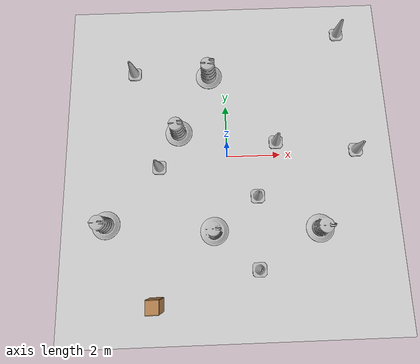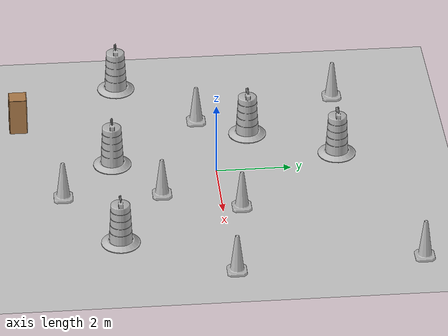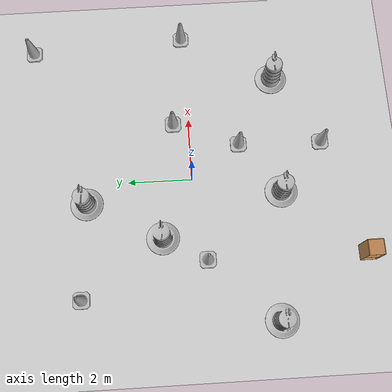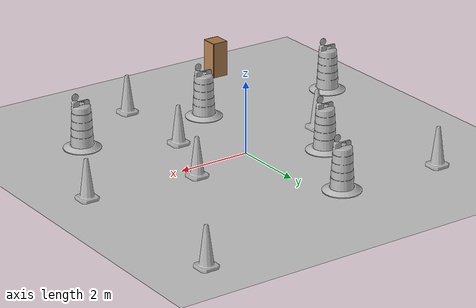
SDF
<sdf version="1.7">
 <world name="default">
  <light name="sun" type="directional">
   <pose>0 0 10 0 -0 0</pose>
   <diffuse>0.8 0.8 0.8 1</diffuse>
   <specular>0.2 0.2 0.2 1</specular>
   <attenuation>
    <range>1000</range>
    <constant>0.9</constant>
    <linear>0.01</linear>
    <quadratic>0.001</quadratic>
   </attenuation>
   <direction>-0.5 0.1 -0.9</direction>
   <spot><inner_angle>0</inner_angle><outer_angle>0</outer_angle><falloff>0</falloff></spot>
  </light>
  <model name="ground_plane">
   <static>1</static>
   <link name="link">
    <collision name="collision">
     <geometry><plane><normal>0 0 1</normal><size>100 100</size></plane></geometry>
     <surface><friction><ode><mu>100</mu><mu2>50</mu2></ode></friction></surface>
    </collision>
    <visual name="visual">
     <cast_shadows>0</cast_shadows>
     <geometry><plane><normal>0 0 1</normal><size>100 100</size></plane></geometry>
     <material>
      <script><uri>file://media/materials/scripts/gazebo.material</uri><name>Gazebo/Grey</name></script>
     </material>
    </visual>
   </link>
  </model>
  <gravity>0 0 -9.8</gravity>
  <magnetic_field>6e-06 2.3e-05 -4.2e-05</magnetic_field>
  <atmosphere type="adiabatic"/>
  <physics type="ode">
   <max_step_size>0.001</max_step_size>
   <real_time_factor>1</real_time_factor>
   <real_time_update_rate>1000</real_time_update_rate>
  </physics>
  <scene><ambient>0.4 0.4 0.4 1</ambient><background>0.7 0.7 0.7 1</background><shadows>1</shadows></scene>
  <audio><device>default</device></audio>
  <spherical_coordinates>
   <surface_model>EARTH_WGS84</surface_model>
   <latitude_deg>0</latitude_deg>
   <longitude_deg>0</longitude_deg>
   <elevation>0</elevation>
   <heading_deg>0</heading_deg>
  </spherical_coordinates>
  <model name="Construction Barrel">
   <link name="link">
    <inertial>
     <pose>0 0 0.4 0 -0 0</pose>
     <mass>500</mass>
     <inertia><ixx>51.2096</ixx><iyy>51.2096</iyy><izz>25</izz><ixy>0</ixy><ixz>0</ixz><iyz>0</iyz></inertia>
    </inertial>
    <collision name="collision">
     <geometry><mesh><uri>model://construction_barrel/meshes/construction_barrel.dae</uri></mesh></geometry>
    </collision>
    <visual name="visual">
     <geometry><mesh><uri>model://construction_barrel/meshes/construction_barrel.dae</uri></mesh></geometry>
    </visual>
   </link>
   <pose>-0.550589 -2.75718 1e-06 3e-06 2e-06 -2.2e-05</pose>
  </model>
  <model name="Construction Barrel_0">
   <link name="link">
    <inertial>
     <pose>0 0 0.4 0 -0 0</pose>
     <mass>500</mass>
     <inertia><ixx>51.2096</ixx><iyy>51.2096</iyy><izz>25</izz><ixy>0</ixy><ixz>0</ixz><iyz>0</iyz></inertia>
    </inertial>
    <collision name="collision">
     <geometry><mesh><uri>model://construction_barrel/meshes/construction_barrel.dae</uri></mesh></geometry>
    </collision>
    <visual name="visual">
     <geometry><mesh><uri>model://construction_barrel/meshes/construction_barrel.dae</uri></mesh></geometry>
    </visual>
   </link>
   <pose>-0.613211 3.30074 1e-06 3e-06 2e-06 -2.1e-05</pose>
  </model>
  <model name="Construction Cone">
   <link name="link">
    <collision name="collision">
     <geometry>
      <mesh><scale>10 10 10</scale><uri>model://construction_cone/meshes/construction_cone.dae</uri></mesh>
     </geometry>
    </collision>
    <visual name="visual">
     <geometry>
      <mesh><scale>10 10 10</scale><uri>model://construction_cone/meshes/construction_cone.dae</uri></mesh>
     </geometry>
    </visual>
    <inertial>
     <inertia><ixx>1</ixx><ixy>0</ixy><ixz>0</ixz><iyy>1</iyy><iyz>0</iyz><izz>1</izz></inertia>
     <mass>1</mass>
    </inertial>
   </link>
   <pose>1.86235 0.499717 0 -0 -0 -0</pose>
  </model>
  <model name="Construction Cone_0">
   <link name="link">
    <collision name="collision">
     <geometry>
      <mesh><scale>10 10 10</scale><uri>model://construction_cone/meshes/construction_cone.dae</uri></mesh>
     </geometry>
    </collision>
    <visual name="visual">
     <geometry>
      <mesh><scale>10 10 10</scale><uri>model://construction_cone/meshes/construction_cone.dae</uri></mesh>
     </geometry>
    </visual>
    <inertial>
     <inertia><ixx>1</ixx><ixy>0</ixy><ixz>0</ixz><iyy>1</iyy><iyz>0</iyz><izz>1</izz></inertia>
     <mass>1</mass>
    </inertial>
   </link>
   <pose>4.61175 4.97089 0 -0 -0 -0</pose>
  </model>
  <model name="Construction Cone_1">
   <link name="link">
    <collision name="collision">
     <geometry>
      <mesh><scale>10 10 10</scale><uri>model://construction_cone/meshes/construction_cone.dae</uri></mesh>
     </geometry>
    </collision>
    <visual name="visual">
     <geometry>
      <mesh><scale>10 10 10</scale><uri>model://construction_cone/meshes/construction_cone.dae</uri></mesh>
     </geometry>
    </visual>
    <inertial>
     <inertia><ixx>1</ixx><ixy>0</ixy><ixz>0</ixz><iyy>1</iyy><iyz>0</iyz><izz>1</izz></inertia>
     <mass>1</mass>
    </inertial>
   </link>
   <pose>4.86775 0.09049 -0 0 -0 0</pose>
  </model>
  <model name="Construction Barrel_1">
   <link name="link">
    <inertial>
     <pose>0 0 0.4 0 -0 0</pose>
     <mass>500</mass>
     <inertia><ixx>51.2096</ixx><iyy>51.2096</iyy><izz>25</izz><ixy>0</ixy><ixz>0</ixz><iyz>0</iyz></inertia>
    </inertial>
    <collision name="collision">
     <geometry><mesh><uri>model://construction_barrel/meshes/construction_barrel.dae</uri></mesh></geometry>
    </collision>
    <visual name="visual">
     <geometry><mesh><uri>model://construction_barrel/meshes/construction_barrel.dae</uri></mesh></geometry>
    </visual>
   </link>
   <pose>-1.81059 0.992483 -1e-06 3e-06 7e-06 -1.5e-05</pose>
  </model>
  <model name="Construction Barrel_2">
   <link name="link">
    <inertial>
     <pose>0 0 0.4 0 -0 0</pose>
     <mass>500</mass>
     <inertia><ixx>51.2096</ixx><iyy>51.2096</iyy><izz>25</izz><ixy>0</ixy><ixz>0</ixz><iyz>0</iyz></inertia>
    </inertial>
    <collision name="collision">
     <geometry><mesh><uri>model://construction_barrel/meshes/construction_barrel.dae</uri></mesh></geometry>
    </collision>
    <visual name="visual">
     <geometry><mesh><uri>model://construction_barrel/meshes/construction_barrel.dae</uri></mesh></geometry>
    </visual>
   </link>
   <pose>3.26876 -2.78015 -2e-06 7e-06 4e-06 -1.5e-05</pose>
  </model>
  <model name="Construction Barrel_3">
   <link name="link">
    <inertial>
     <pose>0 0 0.4 0 -0 0</pose>
     <mass>500</mass>
     <inertia><ixx>51.2096</ixx><iyy>51.2096</iyy><izz>25</izz><ixy>0</ixy><ixz>0</ixz><iyz>0</iyz></inertia>
    </inertial>
    <collision name="collision">
     <geometry><mesh><uri>model://construction_barrel/meshes/construction_barrel.dae</uri></mesh></geometry>
    </collision>
    <visual name="visual">
     <geometry><mesh><uri>model://construction_barrel/meshes/construction_barrel.dae</uri></mesh></geometry>
    </visual>
   </link>
   <pose>-4.46452 -2.40883 0 0 0 -1.2e-05</pose>
  </model>
  <model name="Construction Cone_2">
   <link name="link">
    <collision name="collision">
     <geometry>
      <mesh><scale>10 10 10</scale><uri>model://construction_cone/meshes/construction_cone.dae</uri></mesh>
     </geometry>
    </collision>
    <visual name="visual">
     <geometry>
      <mesh><scale>10 10 10</scale><uri>model://construction_cone/meshes/construction_cone.dae</uri></mesh>
     </geometry>
    </visual>
    <inertial>
     <inertia><ixx>1</ixx><ixy>0</ixy><ixz>0</ixz><iyy>1</iyy><iyz>0</iyz><izz>1</izz></inertia>
     <mass>1</mass>
    </inertial>
   </link>
   <pose>-2.54364 -0.338571 0 -0 -0 -0</pose>
  </model>
  <model name="Construction Cone_3">
   <link name="link">
    <collision name="collision">
     <geometry>
      <mesh><scale>10 10 10</scale><uri>model://construction_cone/meshes/construction_cone.dae</uri></mesh>
     </geometry>
    </collision>
    <visual name="visual">
     <geometry>
      <mesh><scale>10 10 10</scale><uri>model://construction_cone/meshes/construction_cone.dae</uri></mesh>
     </geometry>
    </visual>
    <inertial>
     <inertia><ixx>1</ixx><ixy>0</ixy><ixz>0</ixz><iyy>1</iyy><iyz>0</iyz><izz>1</izz></inertia>
     <mass>1</mass>
    </inertial>
   </link>
   <pose>1.00931 -4.15175 0 -0 -0 -0</pose>
  </model>
  <model name="Construction Cone_4">
   <link name="link">
    <collision name="collision">
     <geometry>
      <mesh><scale>10 10 10</scale><uri>model://construction_cone/meshes/construction_cone.dae</uri></mesh>
     </geometry>
    </collision>
    <visual name="visual">
     <geometry>
      <mesh><scale>10 10 10</scale><uri>model://construction_cone/meshes/construction_cone.dae</uri></mesh>
     </geometry>
    </visual>
    <inertial>
     <inertia><ixx>1</ixx><ixy>0</ixy><ixz>0</ixz><iyy>1</iyy><iyz>0</iyz><izz>1</izz></inertia>
     <mass>1</mass>
    </inertial>
   </link>
   <pose>-3.53384 3.49652 -0 -0 -0 -0</pose>
  </model>
  <model name="cabinet">
   <static>1</static>
   <link name="cabinet_bottom_plate">
    <inertial>
     <pose>0 0 -1 0 -0 0</pose>
     <inertia><ixx>2.05</ixx><ixy>0</ixy><ixz>0</ixz><iyy>2.05</iyy><iyz>0</iyz><izz>2.05</izz></inertia>
     <mass>25</mass>
    </inertial>
    <collision name="cabinet_bottom_plate_geom">
     <pose>0 0 0.01 0 -0 0</pose>
     <geometry><box><size>0.45 0.45 0.02</size></box></geometry>
    </collision>
    <visual name="cabinet_bottom_plate_geom_visual">
     <pose>0 0 0.01 0 -0 0</pose>
     <geometry><box><size>0.45 0.45 0.02</size></box></geometry>
     <material>
      <script><uri>file://media/materials/scripts/gazebo.material</uri><name>Gazebo/Wood</name></script>
     </material>
    </visual>
    <collision name="cabinet_bottom_plate_geom_cabinet_back_plate">
     <pose>0.235 0 0.51 0 -0 0</pose>
     <geometry><box><size>0.02 0.45 1.02</size></box></geometry>
    </collision>
    <visual name="cabinet_bottom_plate_geom_cabinet_back_plate_visual">
     <pose>0.235 0 0.51 0 -0 0</pose>
     <geometry><box><size>0.02 0.45 1.02</size></box></geometry>
     <material>
      <script><uri>file://media/materials/scripts/gazebo.material</uri><name>Gazebo/Wood</name></script>
     </material>
    </visual>
    <collision name="cabinet_bottom_plate_geom_cabinet_left_plate">
     <pose>0 0.235 0.51 0 -0 0</pose>
     <geometry><box><size>0.45 0.02 1.02</size></box></geometry>
    </collision>
    <visual name="cabinet_bottom_plate_geom_cabinet_left_plate_visual">
     <pose>0 0.235 0.51 0 -0 0</pose>
     <geometry><box><size>0.45 0.02 1.02</size></box></geometry>
     <material>
      <script><uri>file://media/materials/scripts/gazebo.material</uri><name>Gazebo/Wood</name></script>
     </material>
    </visual>
    <collision name="cabinet_bottom_plate_geom_cabinet_middle_plate">
     <pose>0 0 0.51 0 -0 0</pose>
     <geometry><box><size>0.45 0.45 0.02</size></box></geometry>
    </collision>
    <visual name="cabinet_bottom_plate_geom_cabinet_middle_plate_visual">
     <pose>0 0 0.51 0 -0 0</pose>
     <geometry><box><size>0.45 0.45 0.02</size></box></geometry>
     <material>
      <script><uri>file://media/materials/scripts/gazebo.material</uri><name>Gazebo/Wood</name></script>
     </material>
    </visual>
    <collision name="cabinet_bottom_plate_geom_cabinet_right_plate">
     <pose>0 -0.235 0.51 0 -0 0</pose>
     <geometry><box><size>0.45 0.02 1.02</size></box></geometry>
    </collision>
    <visual name="cabinet_bottom_plate_geom_cabinet_right_plate_visual">
     <pose>0 -0.235 0.51 0 -0 0</pose>
     <geometry><box><size>0.45 0.02 1.02</size></box></geometry>
     <material>
      <script><uri>file://media/materials/scripts/gazebo.material</uri><name>Gazebo/Wood</name></script>
     </material>
    </visual>
    <collision name="cabinet_bottom_plate_geom_cabinet_top_plate">
     <pose>0 0 1.01 0 -0 0</pose>
     <geometry><box><size>0.45 0.45 0.02</size></box></geometry>
    </collision>
    <visual name="cabinet_bottom_plate_geom_cabinet_top_plate_visual">
     <pose>0 0 1.01 0 -0 0</pose>
     <geometry><box><size>0.45 0.45 0.02</size></box></geometry>
     <material>
      <script><uri>file://media/materials/scripts/gazebo.material</uri><name>Gazebo/Wood</name></script>
     </material>
    </visual>
   </link>
   <pose>-2.60607 -5.18703 0 0 -0 0</pose>
  </model>
  <model name="Construction Cone_5">
   <link name="link">
    <collision name="collision">
     <geometry>
      <mesh><scale>10 10 10</scale><uri>model://construction_cone/meshes/construction_cone.dae</uri></mesh>
     </geometry>
    </collision>
    <visual name="visual">
     <geometry>
      <mesh><scale>10 10 10</scale><uri>model://construction_cone/meshes/construction_cone.dae</uri></mesh>
     </geometry>
    </visual>
    <inertial>
     <inertia><ixx>1</ixx><ixy>0</ixy><ixz>0</ixz><iyy>1</iyy><iyz>0</iyz><izz>1</izz></inertia>
     <mass>1</mass>
    </inertial>
   </link>
   <pose>1.07387 -1.54465 -0 0 -1e-06 0</pose>
  </model>
 </world>
</sdf>
